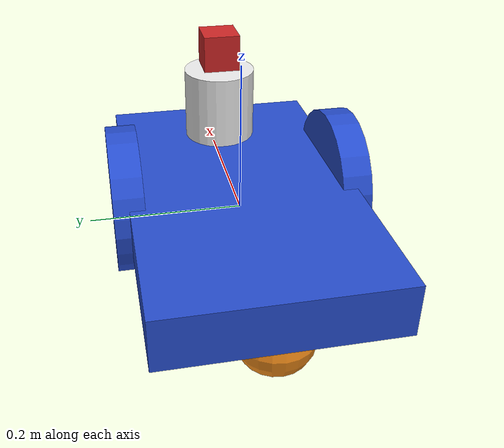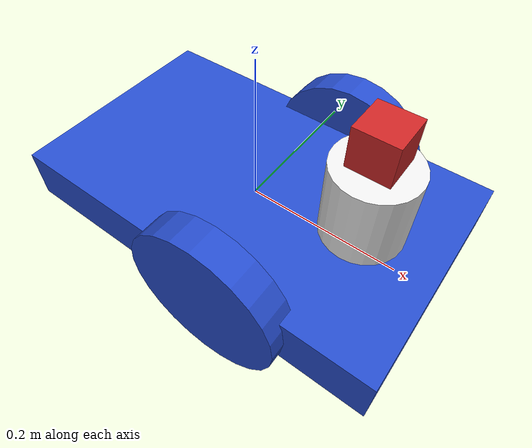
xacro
<?xml version="1.0" ?>
<robot name="my_first_robot" xmlns:xacro="http://www.ros.org/wiki/xacro">

  <xacro:include filename="$(find my_mobile1)/urdf/material.xacro" />
  <xacro:include filename="$(find my_mobile1)/urdf/mobile_robot.gazebo" />
  <xacro:include filename="$(find my_mobile1)/urdf/macros.xacro" />
  <xacro:property name="camera_link" value="0.05" />

  <link name="link_chassis">
    <!-- pose and inertial -->
    <pose>0 0 0.1 0 0 0</pose>
    <inertial>
      <mass value="5"/>
      <origin rpy="0 0 0" xyz="0 0 0.1"/>
      <inertia ixx="0.0395416666667" ixy="0" ixz="0" iyy="0.106208333333" iyz="0" izz="0.106208333333"/>
    </inertial>
    <!-- body -->
    <collision name="collision_chassis">
      <geometry>
        <box size="0.5 0.3 0.07"/>
      </geometry>
    </collision>
    <visual>
      <origin rpy="0 0 0" xyz="0 0 0"/>
      <geometry>
        <box size="0.5 0.3 0.07"/>
      </geometry>
      <material name="blue"/>
    </visual>
    <!-- caster front -->
    <collision name="caster_front_collision">
      <origin rpy=" 0 0 0" xyz="-0.35 0 -0.05"/>
      <geometry>
        <sphere radius="0.05"/>
      </geometry>
      <surface>
        <friction>
          <ode>
            <mu>0</mu>
            <mu2>0</mu2>
            <slip1>1.0</slip1>
            <slip2>1.0</slip2>
          </ode>
        </friction>
      </surface>
    </collision>
    <visual name="caster_front_visual">
      <origin rpy=" 0 0 0" xyz="-0.2 0 -0.05"/>
      <geometry>
        <sphere radius="0.05"/>
      </geometry>
    </visual>
  </link>

  <link name="sensor_laser">
    <inertial>
        <origin xyz="0 0 0" rpy="0 0 0" />
        <mass value="1" />
        <xacro:cylinder_inertia mass="1" r="0.05" l="0.1" />
    </inertial>
    <visual>
        <origin xyz="0 0 0" rpy="0 0 0" />
        <geometry>
        <cylinder radius="0.05" length="0.1"/>
        </geometry>
        <material name="white" />
    </visual>
    <collision>
        <origin xyz="0 0 0" rpy="0 0 0"/>
        <geometry>
        <cylinder radius="0.05" length="0.1"/>
        </geometry>
    </collision>
  </link>

  <joint name="camera_joint" type="fixed">
    <axis xyz="0 1 0" />
    <origin xyz="0 0 0.08" rpy="0 0 0"/>
    <parent link="sensor_laser"/>
    <child link="camera_link"/>
  </joint>

  <!-- Camera -->
  <link name="camera_link">
    <collision>
      <origin xyz="0 0 0" rpy="0 0 0"/>
      <geometry>
    <box size="${camera_link} ${camera_link} ${camera_link}"/>
      </geometry>
    </collision>

    <visual>
      <origin xyz="0 0 0" rpy="0 0 0"/>
      <geometry>
    <box size="${camera_link} ${camera_link} ${camera_link}"/>
      </geometry>
      <material name="red"/>
    </visual>

    <inertial>
      <mass value="1e-5" />
      <origin xyz="0 0 0" rpy="0 0 0"/>
      <inertia ixx="1e-6" ixy="0" ixz="0" iyy="1e-6" iyz="0" izz="1e-6" />
    </inertial>
  </link>

  <joint name="joint_sensor_laser" type="fixed">
    <origin xyz="0.15 0 0.09" rpy="0 0 0"/>
    <parent link="link_chassis"/>
    <child link="sensor_laser"/>
  </joint>

  <xacro:link_wheel name="link_right_wheel" />
  <xacro:joint_wheel name="joint_right_wheel" child="link_right_wheel" origin_xyz="0.05 0.15 0" />

  <xacro:link_wheel name="link_left_wheel" />
  <xacro:joint_wheel name="joint_left_wheel" child="link_left_wheel" origin_xyz="0.05 -0.15 0" />
</robot>

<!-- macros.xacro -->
<robot xmlns:xacro="http://www.ros.org/wiki/xacro">
    <xacro:macro name="link_wheel" params="name">
        <link name="${name}">
            <inertial>
              <mass value="0.2"/>
              <origin rpy="0 1.5707 1.5707" xyz="0 0 0"/>
              <inertia ixx="0.000526666666667" ixy="0" ixz="0" iyy="0.000526666666667" iyz="0" izz="0.001"/>
            </inertial>
            <collision name="link_right_wheel_collision">
              <origin rpy="0 1.5707 1.5707" xyz="0 0 0"/>
              <geometry>
                <cylinder length="0.04" radius="0.1"/>
              </geometry>
            </collision>
            <visual name="${name}_visual">
              <origin rpy="0 1.5707 1.5707" xyz="0 0 0"/>
              <geometry>
                <cylinder length="0.04" radius="0.1"/>
              </geometry>
            </visual>
        </link>
    </xacro:macro>

    <xacro:macro name="joint_wheel" params="name child origin_xyz">
      <joint name="${name}" type="continuous">
        <origin rpy="0 0 0" xyz="${origin_xyz}"/>
        <child link="${child}"/>
        <parent link="link_chassis"/>
        <axis rpy="0 0 0" xyz="0 1 0"/>
        <limit effort="10000" velocity="1000"/>
        <joint_properties damping="1.0" friction="1.0"/>
      </joint>
    </xacro:macro>

    <macro name="cylinder_inertia" params="mass r l">
      <inertia  ixx="${mass*(3*r*r+l*l)/12}" ixy = "0" ixz = "0"
                iyy="${mass*(3*r*r+l*l)/12}" iyz = "0"
                izz="${mass*(r*r)/2}" />
    </macro>
</robot>
